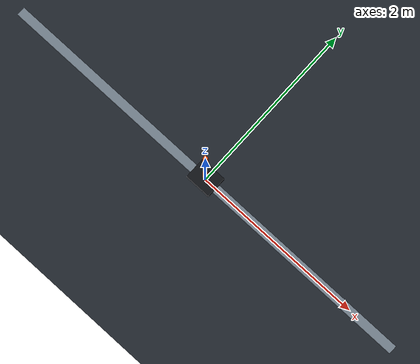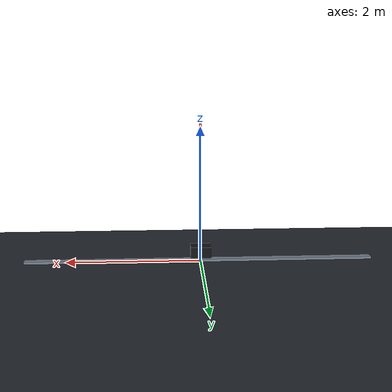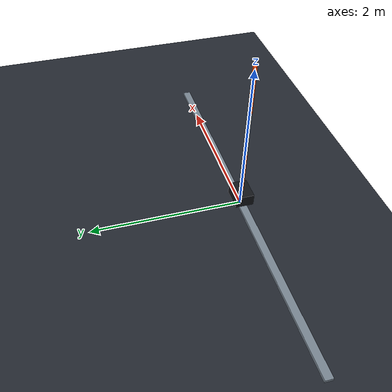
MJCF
<?xml version="1.0" encoding="utf-8"?>
<mujoco model="actuatex_cartpole_3">
  <compiler angle="radian" autolimits="true" inertiafromgeom="false"/>
  <option timestep="0.008333333333333333" gravity="0 0 -9.81" integrator="implicitfast" iterations="20"/>
  <visual><global offwidth="1280" offheight="720"/></visual>
  <default>
    <joint armature="0.001"/>
    <geom contype="0" conaffinity="0"/>
  </default>
  <asset>
    <material name="graphite" rgba="0.075 0.085 0.10 1"/>
    <material name="orange" rgba="1.0 0.30 0.04 1"/>
    <material name="metal" rgba="0.48 0.53 0.58 1"/>
    <material name="floor" rgba="0.14 0.16 0.19 1"/>
  </asset>
  <worldbody>
    <light pos="0 -3 4" dir="0 0.4 -1" diffuse="0.9 0.9 0.9"/>
    <geom name="ground" type="plane" size="0 0 0.1" material="floor"/>
    <geom name="rail" type="box" pos="0 0 0.02" size="2.6 0.05 0.02" material="metal"/>
    <body name="cart" pos="0 0 0.16">
      <joint name="cart_slide" type="slide" axis="1 0 0" range="-2.4 2.4" damping="0.05"/>
      <inertial pos="0 0 0" mass="1.00000000" diaginertia="0.0069333333 0.0096333333 0.0123000000"/>
      <geom name="cart_visual" type="box" size="0.15 0.12 0.08" material="graphite"/>
      <body name="pole_1" pos="0 0 0.080">
        <joint name="pole_1_hinge" type="hinge" axis="0 1 0" damping="0.002"/>
        <inertial pos="0 0 0.300" mass="0.20000000" diaginertia="0.0060266667 0.0060266667 0.0000533333"/>
        <geom name="pole_1_visual" type="box" pos="0 0 0.300" size="0.020 0.020 0.300" material="orange"/>
        <body name="pole_2" pos="0 0 0.600">
          <joint name="pole_2_hinge" type="hinge" axis="0 1 0" damping="0.002"/>
          <inertial pos="0 0 0.300" mass="0.20000000" diaginertia="0.0060266667 0.0060266667 0.0000533333"/>
          <geom name="pole_2_visual" type="box" pos="0 0 0.300" size="0.020 0.020 0.300" material="metal"/>
          <body name="pole_3" pos="0 0 0.600">
            <joint name="pole_3_hinge" type="hinge" axis="0 1 0" damping="0.002"/>
            <inertial pos="0 0 0.300" mass="0.20000000" diaginertia="0.0060266667 0.0060266667 0.0000533333"/>
            <geom name="pole_3_visual" type="box" pos="0 0 0.300" size="0.020 0.020 0.300" material="orange"/>
          </body>
        </body>
      </body>
    </body>
  </worldbody>
  <actuator>
    <motor name="cart_force" joint="cart_slide" gear="1" ctrllimited="true" ctrlrange="-20 20"/>
  </actuator>
</mujoco>
